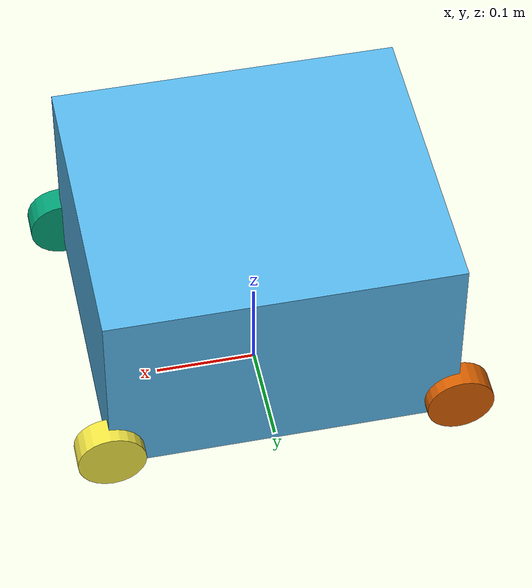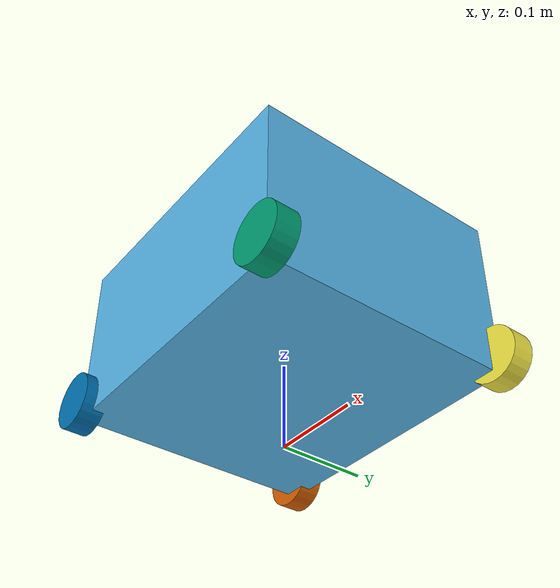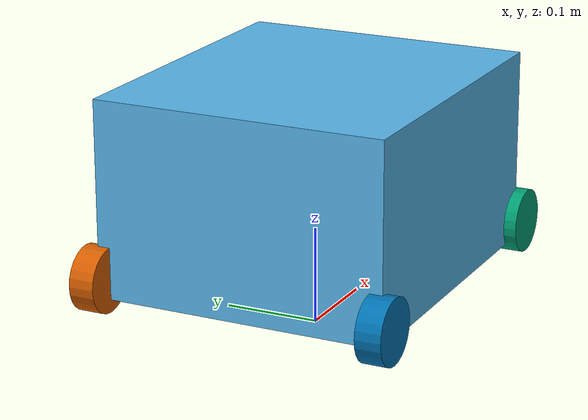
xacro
<?xml version="1.0"?>

<robot name="robix" xmlns:xacro="http://www.ros.org/wiki/xacro">

	<xacro:arg name="is_sim" default="true"/>

	<link name="base_footprint"/>

	<link name="base_link">
		<visual>
			<origin xyz="0 0 0.08"/>
			<geometry>
				<box size="0.34 0.30 0.20"/>
			</geometry>
		</visual>
		<collision>
			<origin xyz="0 0 0"/>
			<geometry>
				<box size="0.34 0.30 0.20"/>
			</geometry>
		</collision>
	</link>

	<!-- Primer Joint -->

	<joint name="base_joint" type="fixed">
		<parent link="base_footprint"/>
		<child link="base_link"/>
		<origin xyz="0 0 0.08"/>
	</joint>

	<!-- Rueda Derecha -->

	<link name="right_wheel_link" >
		<visual>
			<origin xyz="0 0 0" rpy="1.57 0 0"/>
			<geometry>
				<cylinder radius="0.033" length="0.026"/>
			</geometry>
		</visual>
		<collision>
			<origin xyz="0 0 0" rpy="1.57 0 0"/>
			<geometry>
				<cylinder radius="0.033" length="0.026"/>
			</geometry>
		</collision>
	</link>

	<!-- Joint con Rueda Derecha -->

	<joint name="wheel_right_joint" type="continuous">
		<parent link="base_link"/>
		<child link="right_wheel_link" />
		<origin xyz="0.17 -0.15 0"/>
		<axis xyz="0 1 0" />
	</joint>

	<!-- Rueda Izquierda -->

	<link name="left_wheel_link" >
		<visual>
			<origin xyz="0 0 0" rpy="1.57 0 0"/>
			<geometry>
				<cylinder radius="0.033" length="0.026"/>
			</geometry>
		</visual>
		<collision>
			<origin xyz="0 0 0" rpy="1.57 0 0"/>
			<geometry>
				<cylinder radius="0.033" length="0.026"/>
			</geometry>
		</collision>
	</link>

	<joint name="wheel_left_joint" type="continuous">
		<parent link="base_link"/>
		<child link="left_wheel_link" />
		<origin xyz="0.17 0.15 0"/>
		<axis xyz="0 1 0" />
	</joint>

	<!-- Rueda Loca Derecha -->

	<link name="right_caster_wheel_link" >
		<visual>
			<origin xyz="0 0 0" rpy="1.57 0 0"/>
			<geometry>
				<cylinder radius="0.033" length="0.026"/>
			</geometry>
		</visual>
		<collision>
			<origin xyz="0 0 0" rpy="1.57 0 0"/>
			<geometry>
				<cylinder radius="0.033" length="0.026"/>
			</geometry>
		</collision>
	</link>

	<joint name="wheel_right_caster_joint" type="fixed">
		<parent link="base_link"/>
		<child link="right_caster_wheel_link" />
		<origin xyz="-0.17 -0.15 0"/>
	</joint>

	<!-- Rueda Loca Izquierda -->

	<link name="left_caster_wheel_link" >
		<visual>
			<origin xyz="0 0 0" rpy="1.57 0 0"/>
			<geometry>
				<cylinder radius="0.033" length="0.026"/>
			</geometry>
		</visual>
		<collision>
			<origin xyz="0 0 0" rpy="1.57 0 0"/>
			<geometry>
				<cylinder radius="0.033" length="0.026"/>
			</geometry>
		</collision>
	</link>

	<!-- Joint con Rueda Izquierda -->

	<joint name= "wheel_left_caster_joint" type="fixed">
		<parent link="base_link"/>
		<child link="left_caster_wheel_link" />
		<origin xyz="-0.17 0.15 0"/>
	</joint>

</robot>
